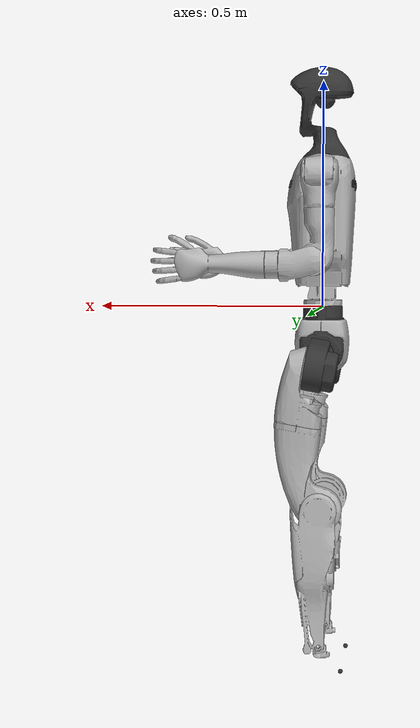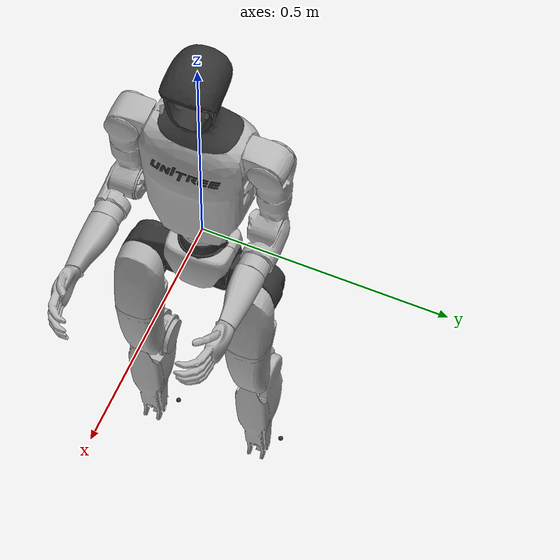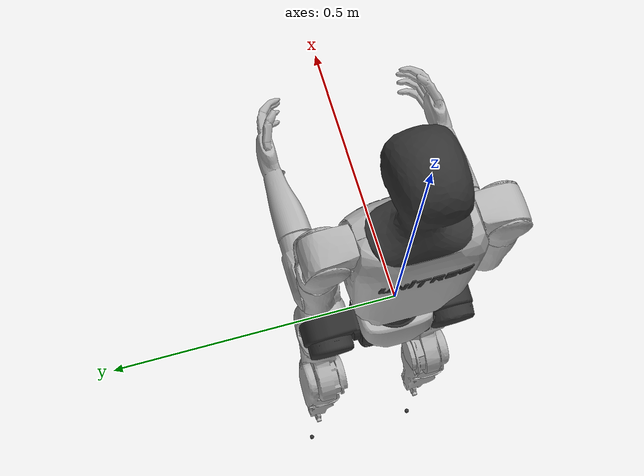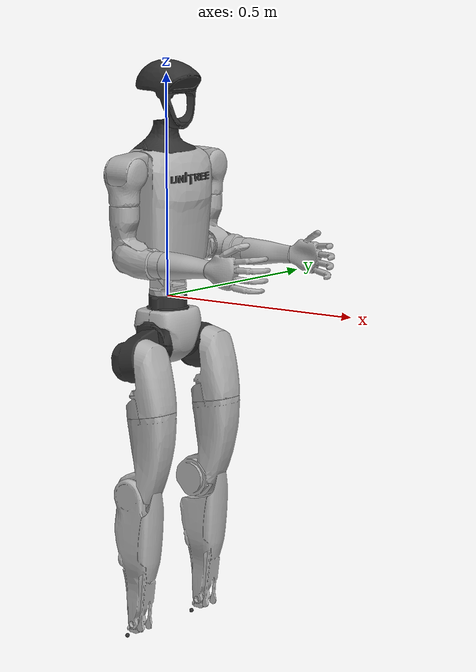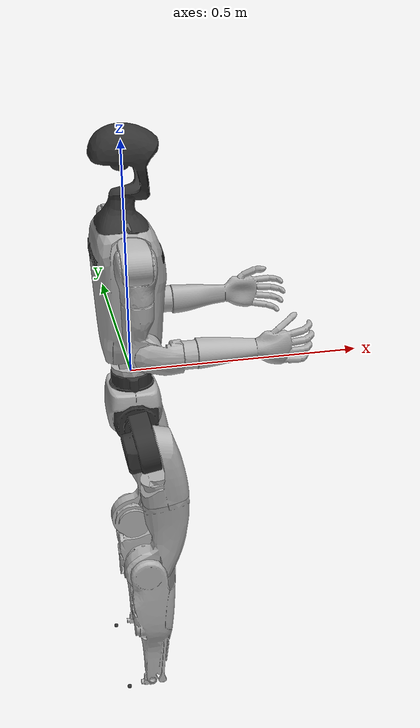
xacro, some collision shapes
<robot name="g1_23dof_rev_1_0" xmlns:xacro="http://ros.org/wiki/xacro">
  <xacro:arg name="hardware_plugin" default="mujoco_ros2_control/MujocoSystem"/>
  <link name="base_link"/>
  <joint name="base_link_to_pelvis" type="fixed">
    <parent link="base_link"/>
    <child link="pelvis"/>
    <origin xyz="0 0 0" rpy="0 0 0"/>
  </joint>
  <material name="dark">
    <color rgba="0.2 0.2 0.2 1"/>
  </material>
  <material name="white">
    <color rgba="0.7 0.7 0.7 1"/>
  </material>

  <mujoco>
    <compiler meshdir="meshes" discardvisual="false"/>
  </mujoco>

  <!-- [CAUTION] uncomment when convert to mujoco -->

  <link name="pelvis">
    <inertial>
      <origin xyz="0 0 -0.07605" rpy="0 0 0"/>
      <mass value="3.813"/>
      <inertia ixx="0.010549" ixy="0" ixz="2.1E-06" iyy="0.0093089" iyz="0" izz="0.0079184"/>
    </inertial>
    <visual>
      <origin xyz="0 0 0" rpy="0 0 0"/>
      <geometry>
        <mesh filename="meshes/pelvis.STL"/>
      </geometry>
      <material name="dark"/>
    </visual>
  </link>
  <link name="pelvis_contour_link">
    <inertial>
      <origin xyz="0 0 0" rpy="0 0 0"/>
      <mass value="0.001"/>
      <inertia ixx="1e-7" ixy="0" ixz="0" iyy="1e-7" iyz="0" izz="1e-7"/>
    </inertial>
    <visual>
      <origin xyz="0 0 0" rpy="0 0 0"/>
      <geometry>
        <mesh filename="meshes/pelvis_contour_link.STL"/>
      </geometry>
      <material name="white"/>
    </visual>
    <collision>
      <origin xyz="0 0 0" rpy="0 0 0"/>
      <geometry>
        <mesh filename="meshes/pelvis_contour_link.STL"/>
      </geometry>
    </collision>
  </link>
  <joint name="pelvis_contour_joint" type="fixed">
    <parent link="pelvis"/>
    <child link="pelvis_contour_link"/>
  </joint>

  <!-- Legs -->
  <link name="left_hip_pitch_link">
    <inertial>
      <origin xyz="0.002741 0.047791 -0.02606" rpy="0 0 0"/>
      <mass value="1.35"/>
      <inertia ixx="0.001811" ixy="3.68E-05" ixz="-3.44E-05" iyy="0.0014193" iyz="0.000171" izz="0.0012812"/>
    </inertial>
    <visual>
      <origin xyz="0 0 0" rpy="0 0 0"/>
      <geometry>
        <mesh filename="meshes/left_hip_pitch_link.STL"/>
      </geometry>
      <material name="dark"/>
    </visual>
    <collision>
      <origin xyz="0 0 0" rpy="0 0 0"/>
      <geometry>
        <mesh filename="meshes/left_hip_pitch_link.STL"/>
      </geometry>
    </collision>
  </link>
  <joint name="left_hip_pitch_joint" type="revolute">
    <origin xyz="0 0.064452 -0.1027" rpy="0 0 0"/>
    <parent link="pelvis"/>
    <child link="left_hip_pitch_link"/>
    <axis xyz="0 1 0"/>
    <limit lower="-2.5307" upper="2.8798" effort="88" velocity="32"/>
  </joint>
  <link name="left_hip_roll_link">
    <inertial>
      <origin xyz="0.029812 -0.001045 -0.087934" rpy="0 0 0"/>
      <mass value="1.52"/>
      <inertia ixx="0.0023773" ixy="-3.8E-06" ixz="-0.0003908" iyy="0.0024123" iyz="1.84E-05" izz="0.0016595"/>
    </inertial>
    <visual>
      <origin xyz="0 0 0" rpy="0 0 0"/>
      <geometry>
        <mesh filename="meshes/left_hip_roll_link.STL"/>
      </geometry>
      <material name="white"/>
    </visual>
    <collision>
      <origin xyz="0 0 0" rpy="0 0 0"/>
      <geometry>
        <mesh filename="meshes/left_hip_roll_link.STL"/>
      </geometry>
    </collision>
  </link>
  <joint name="left_hip_roll_joint" type="revolute">
    <origin xyz="0 0.052 -0.030465" rpy="0 -0.1749 0"/>
    <parent link="left_hip_pitch_link"/>
    <child link="left_hip_roll_link"/>
    <axis xyz="1 0 0"/>
    <limit lower="-0.5236" upper="2.9671" effort="139" velocity="20"/>
  </joint>
  <link name="left_hip_yaw_link">
    <inertial>
      <origin xyz="-0.057709 -0.010981 -0.15078" rpy="0 0 0"/>
      <mass value="1.702"/>
      <inertia ixx="0.0057774" ixy="-0.0005411" ixz="-0.0023948" iyy="0.0076124" iyz="-0.0007072" izz="0.003149"/>
    </inertial>
    <visual>
      <origin xyz="0 0 0" rpy="0 0 0"/>
      <geometry>
        <mesh filename="meshes/left_hip_yaw_link.STL"/>
      </geometry>
      <material name="white"/>
    </visual>
    <collision>
      <origin xyz="0 0 0" rpy="0 0 0"/>
      <geometry>
        <mesh filename="meshes/left_hip_yaw_link.STL"/>
      </geometry>
    </collision>
  </link>
  <joint name="left_hip_yaw_joint" type="revolute">
    <origin xyz="0.025001 0 -0.12412" rpy="0 0 0"/>
    <parent link="left_hip_roll_link"/>
    <child link="left_hip_yaw_link"/>
    <axis xyz="0 0 1"/>
    <limit lower="-2.7576" upper="2.7576" effort="88" velocity="32"/>
  </joint>
  <link name="left_knee_link">
    <inertial>
      <origin xyz="0.005457 0.003964 -0.12074" rpy="0 0 0"/>
      <mass value="1.932"/>
      <inertia ixx="0.011329" ixy="4.82E-05" ixz="-4.49E-05" iyy="0.011277" iyz="-0.0007146" izz="0.0015168"/>
    </inertial>
    <visual>
      <origin xyz="0 0 0" rpy="0 0 0"/>
      <geometry>
        <mesh filename="meshes/left_knee_link.STL"/>
      </geometry>
      <material name="white"/>
    </visual>
    <collision>
      <origin xyz="0 0 0" rpy="0 0 0"/>
      <geometry>
        <mesh filename="meshes/left_knee_link.STL"/>
      </geometry>
    </collision>
  </link>
  <joint name="left_knee_joint" type="revolute">
    <origin xyz="-0.078273 0.0021489 -0.17734" rpy="0 0.1749 0"/>
    <parent link="left_hip_yaw_link"/>
    <child link="left_knee_link"/>
    <axis xyz="0 1 0"/>
    <limit lower="-0.087267" upper="2.8798" effort="139" velocity="20"/>
  </joint>
  <link name="left_ankle_pitch_link">
    <inertial>
      <origin xyz="-0.007269 0 0.011137" rpy="0 0 0"/>
      <mass value="0.074"/>
      <inertia ixx="8.4E-06" ixy="0" ixz="-2.9E-06" iyy="1.89E-05" iyz="0" izz="1.26E-05"/>
    </inertial>
    <visual>
      <origin xyz="0 0 0" rpy="0 0 0"/>
      <geometry>
        <mesh filename="meshes/left_ankle_pitch_link.STL"/>
      </geometry>
      <material name="white"/>
    </visual>
    <collision>
      <origin xyz="0 0 0" rpy="0 0 0"/>
      <geometry>
        <mesh filename="meshes/left_ankle_pitch_link.STL"/>
      </geometry>
    </collision>
  </link>
  <joint name="left_ankle_pitch_joint" type="revolute">
    <origin xyz="0 -9.4445E-05 -0.30001" rpy="0 0 0"/>
    <parent link="left_knee_link"/>
    <child link="left_ankle_pitch_link"/>
    <axis xyz="0 1 0"/>
    <limit lower="-0.87267" upper="0.5236" effort="35" velocity="30"/>
  </joint>
  <link name="left_ankle_roll_link">
    <inertial>
      <origin xyz="0.026505 0 -0.016425" rpy="0 0 0"/>
      <mass value="0.608"/>
      <inertia ixx="0.0002231" ixy="2E-07" ixz="8.91E-05" iyy="0.0016161" iyz="-1E-07" izz="0.0016667"/>
    </inertial>
    <visual>
      <origin xyz="0 0 0" rpy="0 0 0"/>
      <geometry>
        <mesh filename="meshes/left_ankle_roll_link.STL"/>
      </geometry>
      <material name="dark"/>
    </visual>
    <collision>
      <origin xyz="-0.05 0.025 -0.03" rpy="0 0 0"/>
      <geometry>
        <sphere radius="0.005"/>
      </geometry>
    </collision>
    <collision>
      <origin xyz="-0.05 -0.025 -0.03" rpy="0 0 0"/>
      <geometry>
        <sphere radius="0.005"/>
      </geometry>
    </collision>
    <collision>
      <origin xyz="0.12 0.03 -0.03" rpy="0 0 0"/>
      <geometry>
        <sphere radius="0.005"/>
      </geometry>
    </collision>
    <collision>
      <origin xyz="0.12 -0.03 -0.03" rpy="0 0 0"/>
      <geometry>
        <sphere radius="0.005"/>
      </geometry>
    </collision>
  </link>
  <joint name="left_ankle_roll_joint" type="revolute">
    <origin xyz="0 0 -0.017558" rpy="0 0 0"/>
    <parent link="left_ankle_pitch_link"/>
    <child link="left_ankle_roll_link"/>
    <axis xyz="1 0 0"/>
    <limit lower="-0.2618" upper="0.2618" effort="35" velocity="30"/>
  </joint>
  <link name="right_hip_pitch_link">
    <inertial>
      <origin xyz="0.002741 -0.047791 -0.02606" rpy="0 0 0"/>
      <mass value="1.35"/>
      <inertia ixx="0.001811" ixy="-3.68E-05" ixz="-3.44E-05" iyy="0.0014193" iyz="-0.000171" izz="0.0012812"/>
    </inertial>
    <visual>
      <origin xyz="0 0 0" rpy="0 0 0"/>
      <geometry>
        <mesh filename="meshes/right_hip_pitch_link.STL"/>
      </geometry>
      <material name="dark"/>
    </visual>
    <collision>
      <origin xyz="0 0 0" rpy="0 0 0"/>
      <geometry>
        <mesh filename="meshes/right_hip_pitch_link.STL"/>
      </geometry>
    </collision>
  </link>
  <joint name="right_hip_pitch_joint" type="revolute">
    <origin xyz="0 -0.064452 -0.1027" rpy="0 0 0"/>
    <parent link="pelvis"/>
    <child link="right_hip_pitch_link"/>
    <axis xyz="0 1 0"/>
    <limit lower="-2.5307" upper="2.8798" effort="88" velocity="32"/>
  </joint>
  <link name="right_hip_roll_link">
    <inertial>
      <origin xyz="0.029812 0.001045 -0.087934" rpy="0 0 0"/>
      <mass value="1.52"/>
      <inertia ixx="0.0023773" ixy="3.8E-06" ixz="-0.0003908" iyy="0.0024123" iyz="-1.84E-05" izz="0.0016595"/>
    </inertial>
    <visual>
      <origin xyz="0 0 0" rpy="0 0 0"/>
      <geometry>
        <mesh filename="meshes/right_hip_roll_link.STL"/>
      </geometry>
      <material name="white"/>
    </visual>
    <collision>
      <origin xyz="0 0 0" rpy="0 0 0"/>
      <geometry>
        <mesh filename="meshes/right_hip_roll_link.STL"/>
      </geometry>
    </collision>
  </link>
  <joint name="right_hip_roll_joint" type="revolute">
    <origin xyz="0 -0.052 -0.030465" rpy="0 -0.1749 0"/>
    <parent link="right_hip_pitch_link"/>
    <child link="right_hip_roll_link"/>
    <axis xyz="1 0 0"/>
    <limit lower="-2.9671" upper="0.5236" effort="139" velocity="20"/>
  </joint>
  <link name="right_hip_yaw_link">
    <inertial>
      <origin xyz="-0.057709 0.010981 -0.15078" rpy="0 0 0"/>
      <mass value="1.702"/>
      <inertia ixx="0.0057774" ixy="0.0005411" ixz="-0.0023948" iyy="0.0076124" iyz="0.0007072" izz="0.003149"/>
    </inertial>
    <visual>
      <origin xyz="0 0 0" rpy="0 0 0"/>
      <geometry>
        <mesh filename="meshes/right_hip_yaw_link.STL"/>
      </geometry>
      <material name="white"/>
    </visual>
    <collision>
      <origin xyz="0 0 0" rpy="0 0 0"/>
      <geometry>
        <mesh filename="meshes/right_hip_yaw_link.STL"/>
      </geometry>
    </collision>
  </link>
  <joint name="right_hip_yaw_joint" type="revolute">
    <origin xyz="0.025001 0 -0.12412" rpy="0 0 0"/>
    <parent link="right_hip_roll_link"/>
    <child link="right_hip_yaw_link"/>
    <axis xyz="0 0 1"/>
    <limit lower="-2.7576" upper="2.7576" effort="88" velocity="32"/>
  </joint>
  <link name="right_knee_link">
    <inertial>
      <origin xyz="0.005457 -0.003964 -0.12074" rpy="0 0 0"/>
      <mass value="1.932"/>
      <inertia ixx="0.011329" ixy="-4.82E-05" ixz="4.49E-05" iyy="0.011277" iyz="0.0007146" izz="0.0015168"/>
    </inertial>
    <visual>
      <origin xyz="0 0 0" rpy="0 0 0"/>
      <geometry>
        <mesh filename="meshes/right_knee_link.STL"/>
      </geometry>
      <material name="white"/>
    </visual>
    <collision>
      <origin xyz="0 0 0" rpy="0 0 0"/>
      <geometry>
        <mesh filename="meshes/right_knee_link.STL"/>
      </geometry>
    </collision>
  </link>
  <joint name="right_knee_joint" type="revolute">
    <origin xyz="-0.078273 -0.0021489 -0.17734" rpy="0 0.1749 0"/>
    <parent link="right_hip_yaw_link"/>
    <child link="right_knee_link"/>
    <axis xyz="0 1 0"/>
    <limit lower="-0.087267" upper="2.8798" effort="139" velocity="20"/>
  </joint>
  <link name="right_ankle_pitch_link">
    <inertial>
      <origin xyz="-0.007269 0 0.011137" rpy="0 0 0"/>
      <mass value="0.074"/>
      <inertia ixx="8.4E-06" ixy="0" ixz="-2.9E-06" iyy="1.89E-05" iyz="0" izz="1.26E-05"/>
    </inertial>
    <visual>
      <origin xyz="0 0 0" rpy="0 0 0"/>
      <geometry>
        <mesh filename="meshes/right_ankle_pitch_link.STL"/>
      </geometry>
      <material name="white"/>
    </visual>
    <collision>
      <origin xyz="0 0 0" rpy="0 0 0"/>
      <geometry>
        <mesh filename="meshes/right_ankle_pitch_link.STL"/>
      </geometry>
    </collision>
  </link>
  <joint name="right_ankle_pitch_joint" type="revolute">
    <origin xyz="0 9.4445E-05 -0.30001" rpy="0 0 0"/>
    <parent link="right_knee_link"/>
    <child link="right_ankle_pitch_link"/>
    <axis xyz="0 1 0"/>
    <limit lower="-0.87267" upper="0.5236" effort="35" velocity="30"/>
  </joint>
  <link name="right_ankle_roll_link">
    <inertial>
      <origin xyz="0.026505 0 -0.016425" rpy="0 0 0"/>
      <mass value="0.608"/>
      <inertia ixx="0.0002231" ixy="-2E-07" ixz="8.91E-05" iyy="0.0016161" iyz="1E-07" izz="0.0016667"/>
    </inertial>
    <visual>
      <origin xyz="0 0 0" rpy="0 0 0"/>
      <geometry>
        <mesh filename="meshes/right_ankle_roll_link.STL"/>
      </geometry>
      <material name="dark"/>
    </visual>
    <collision>
      <origin xyz="-0.05 0.025 -0.03" rpy="0 0 0"/>
      <geometry>
        <sphere radius="0.005"/>
      </geometry>
    </collision>
    <collision>
      <origin xyz="-0.05 -0.025 -0.03" rpy="0 0 0"/>
      <geometry>
        <sphere radius="0.005"/>
      </geometry>
    </collision>
    <collision>
      <origin xyz="0.12 0.03 -0.03" rpy="0 0 0"/>
      <geometry>
        <sphere radius="0.005"/>
      </geometry>
    </collision>
    <collision>
      <origin xyz="0.12 -0.03 -0.03" rpy="0 0 0"/>
      <geometry>
        <sphere radius="0.005"/>
      </geometry>
    </collision>
  </link>
  <joint name="right_ankle_roll_joint" type="revolute">
    <origin xyz="0 0 -0.017558" rpy="0 0 0"/>
    <parent link="right_ankle_pitch_link"/>
    <child link="right_ankle_roll_link"/>
    <axis xyz="1 0 0"/>
    <limit lower="-0.2618" upper="0.2618" effort="35" velocity="30"/>
  </joint>

  <!-- Torso -->
  <joint name="waist_yaw_joint" type="revolute">
    <origin xyz="-0.0039635 0 0.044" rpy="0 0 0"/>
    <parent link="pelvis"/>
    <child link="torso_link"/>
    <axis xyz="0 0 1"/>
    <limit lower="-2.618" upper="2.618" effort="88" velocity="32"/>
  </joint>
  <link name="torso_link">
    <inertial>
      <origin xyz="0.000931 0.000346 0.15082" rpy="0 0 0"/>
      <mass value="6.78"/>
      <inertia ixx="0.05905" ixy="3.3302E-05" ixz="-0.0017715" iyy="0.047014" iyz="-2.2399E-05" izz="0.025652"/>
    </inertial>
    <visual>
      <origin xyz="0.0039635 0 -0.044" rpy="0 0 0"/>
      <geometry>
        <mesh filename="meshes/torso_link_23dof_rev_1_0.STL"/>
      </geometry>
      <material name="white"/>
    </visual>
    <collision>
      <origin xyz="0.0039635 0 -0.044" rpy="0 0 0"/>
      <geometry>
        <mesh filename="meshes/torso_link_23dof_rev_1_0.STL"/>
      </geometry>
    </collision>
  </link>

  <!-- LOGO -->
  <joint name="logo_joint" type="fixed">
    <origin xyz="0.0039635 0 -0.044" rpy="0 0 0"/>
    <parent link="torso_link"/>
    <child link="logo_link"/>
  </joint>
  <link name="logo_link">
    <inertial>
      <origin xyz="0 0 0" rpy="0 0 0"/>
      <mass value="0.001"/>
      <inertia ixx="1e-7" ixy="0" ixz="0" iyy="1e-7" iyz="0" izz="1e-7"/>
    </inertial>
    <visual>
      <origin xyz="0 0 0" rpy="0 0 0"/>
      <geometry>
        <mesh filename="meshes/logo_link.STL"/>
      </geometry>
      <material name="dark"/>
    </visual>
    <collision>
      <origin xyz="0 0 0" rpy="0 0 0"/>
      <geometry>
        <mesh filename="meshes/logo_link.STL"/>
      </geometry>
    </collision>
  </link>

  <!-- Head -->
  <link name="head_link">
    <inertial>
      <origin xyz="0.005267 0.000299 0.449869" rpy="0 0 0"/>
      <mass value="1.036"/>
      <inertia ixx="0.004085051" ixy="-2.543E-06" ixz="-6.9455E-05" iyy="0.004185212" iyz="-3.726E-06" izz="0.001807911"/>
    </inertial>
    <visual>
      <origin xyz="0 0 0" rpy="0 0 0"/>
      <geometry>
        <mesh filename="meshes/head_link.STL"/>
      </geometry>
      <material name="dark"/>
    </visual>
    <collision>
      <origin xyz="0 0 0" rpy="0 0 0"/>
      <geometry>
        <mesh filename="meshes/head_link.STL"/>
      </geometry>
    </collision>
  </link>
  <joint name="head_joint" type="fixed">
    <origin xyz="0.0039635 0 -0.044" rpy="0 0 0"/>
    <parent link="torso_link"/>
    <child link="head_link"/>
  </joint>

  <!-- IMU -->
  <link name="imu_in_torso"></link>
  <joint name="imu_in_torso_joint" type="fixed">
    <origin xyz="-0.03959 -0.00224 0.14792" rpy="0 0 0"/>
    <parent link="torso_link"/>
    <child link="imu_in_torso"/>
  </joint>

  <link name="imu_in_pelvis"></link>
  <joint name="imu_in_pelvis_joint" type="fixed">
    <origin xyz="0.04525 0 -0.08339" rpy="0 0 0"/>
    <parent link="pelvis"/>
    <child link="imu_in_pelvis"/>
  </joint>

  <link name="d435_link"></link>
  <joint name="d435_joint" type="fixed">
    <origin xyz="0.0576235 0.01753 0.42987" rpy="0 0.8307767239493009 0"/>
    <parent link="torso_link"/>
    <child link="d435_link"/>
  </joint>

  <!-- mid360 -->
  <link name="mid360_link"></link>
  <joint name="mid360_joint" type="fixed">
    <origin xyz="0.0002835 0.00003 0.41618" rpy="0 0.04014257279586953 0"/>
    <parent link="torso_link"/>
    <child link="mid360_link"/>
  </joint>

  <!-- Arm -->
  <link name="left_shoulder_pitch_link">
    <inertial>
      <origin xyz="0 0.035892 -0.011628" rpy="0 0 0"/>
      <mass value="0.718"/>
      <inertia ixx="0.0004291" ixy="-9.2E-06" ixz="6.4E-06" iyy="0.000453" iyz="2.26E-05" izz="0.000423"/>
    </inertial>
    <visual>
      <origin xyz="0 0 0" rpy="0 0 0"/>
      <geometry>
        <mesh filename="meshes/left_shoulder_pitch_link.STL"/>
      </geometry>
      <material name="white"/>
    </visual>
    <collision>
      <origin xyz="0 0.04 -0.01" rpy="0 1.5707963267948966 0"/>
      <geometry>
        <cylinder radius="0.03" length="0.05"/>
      </geometry>
    </collision>
  </link>
  <joint name="left_shoulder_pitch_joint" type="revolute">
    <origin xyz="0.0039563 0.10022 0.24778" rpy="0.27931 5.4949E-05 -0.00019159"/>
    <parent link="torso_link"/>
    <child link="left_shoulder_pitch_link"/>
    <axis xyz="0 1 0"/>
    <limit lower="-3.0892" upper="2.6704" effort="25" velocity="37"/>
  </joint>
  <link name="left_shoulder_roll_link">
    <inertial>
      <origin xyz="-0.000227 0.00727 -0.063243" rpy="0 0 0"/>
      <mass value="0.643"/>
      <inertia ixx="0.0006177" ixy="-1E-06" ixz="8.7E-06" iyy="0.0006912" iyz="-5.3E-06" izz="0.0003894"/>
    </inertial>
    <visual>
      <origin xyz="0 0 0" rpy="0 0 0"/>
      <geometry>
        <mesh filename="meshes/left_shoulder_roll_link.STL"/>
      </geometry>
      <material name="white"/>
    </visual>
    <collision>
      <origin xyz="-0.004 0.006 -0.053" rpy="0 0 0"/>
      <geometry>
        <cylinder radius="0.03" length="0.03"/>
      </geometry>
    </collision>
  </link>
  <joint name="left_shoulder_roll_joint" type="revolute">
    <origin xyz="0 0.038 -0.013831" rpy="-0.27925 0 0"/>
    <parent link="left_shoulder_pitch_link"/>
    <child link="left_shoulder_roll_link"/>
    <axis xyz="1 0 0"/>
    <limit lower="-1.5882" upper="2.2515" effort="25" velocity="37"/>
  </joint>
  <link name="left_shoulder_yaw_link">
    <inertial>
      <origin xyz="0.010773 -0.002949 -0.072009" rpy="0 0 0"/>
      <mass value="0.734"/>
      <inertia ixx="0.0009988" ixy="7.9E-06" ixz="0.0001412" iyy="0.0010605" iyz="-2.86E-05" izz="0.0004354"/>
    </inertial>
    <visual>
      <origin xyz="0 0 0" rpy="0 0 0"/>
      <geometry>
        <mesh filename="meshes/left_shoulder_yaw_link.STL"/>
      </geometry>
      <material name="white"/>
    </visual>
    <collision>
      <origin xyz="0 0 0" rpy="0 0 0"/>
      <geometry>
        <mesh filename="meshes/left_shoulder_yaw_link.STL"/>
      </geometry>
    </collision>
  </link>
  <joint name="left_shoulder_yaw_joint" type="revolute">
    <origin xyz="0 0.00624 -0.1032" rpy="0 0 0"/>
    <parent link="left_shoulder_roll_link"/>
    <child link="left_shoulder_yaw_link"/>
    <axis xyz="0 0 1"/>
    <limit lower="-2.618" upper="2.618" effort="25" velocity="37"/>
  </joint>
  <link name="left_elbow_link">
    <inertial>
      <origin xyz="0.064956 0.004454 -0.010062" rpy="0 0 0"/>
      <mass value="0.6"/>
      <inertia ixx="0.0002891" ixy="6.53E-05" ixz="1.72E-05" iyy="0.0004152" iyz="-5.6E-06" izz="0.0004197"/>
    </inertial>
    <visual>
      <origin xyz="0 0 0" rpy="0 0 0"/>
      <geometry>
        <mesh filename="meshes/left_elbow_link.STL"/>
      </geometry>
      <material name="white"/>
    </visual>
    <collision>
      <origin xyz="0 0 0" rpy="0 0 0"/>
      <geometry>
        <mesh filename="meshes/left_elbow_link.STL"/>
      </geometry>
    </collision>
  </link>
  <joint name="left_elbow_joint" type="revolute">
    <origin xyz="0.015783 0 -0.080518" rpy="0 0 0"/>
    <parent link="left_shoulder_yaw_link"/>
    <child link="left_elbow_link"/>
    <axis xyz="0 1 0"/>
    <limit lower="-1.0472" upper="2.0944" effort="25" velocity="37"/>
  </joint>
  <joint name="left_wrist_roll_joint" type="revolute">
    <origin xyz="0.100 0.00188791 -0.010" rpy="0 0 0"/>
    <axis xyz="1 0 0"/>
    <parent link="left_elbow_link"/>
    <child link="left_wrist_roll_rubber_hand"/>
    <limit effort="25" velocity="37" lower="-1.972222054" upper="1.972222054"/>
  </joint>
  <link name="left_wrist_roll_rubber_hand">
    <inertial>
      <origin xyz="0.10794656650 0.00163511945 0.00202244863" rpy="0 0 0"/>
      <mass value="0.35692864"/>
      <inertia ixx="0.00019613494735" ixy="-0.00000419816908" ixz="-0.00003950860580" iyy="0.00200280358206" iyz="0.00000249774203" izz="0.00194181412808"/>
    </inertial>
    <visual>
      <origin xyz="0 0 0" rpy="0 0 0"/>
      <geometry>
        <mesh filename="meshes/left_wrist_roll_rubber_hand.STL"/>
      </geometry>
      <material name="white"/>
    </visual>
    <collision>
      <origin xyz="0 0 0" rpy="0 0 0"/>
      <geometry>
        <mesh filename="meshes/left_wrist_roll_rubber_hand.STL"/>
      </geometry>
    </collision>
  </link>
  <link name="right_shoulder_pitch_link">
    <inertial>
      <origin xyz="0 -0.035892 -0.011628" rpy="0 0 0"/>
      <mass value="0.718"/>
      <inertia ixx="0.0004291" ixy="9.2E-06" ixz="6.4E-06" iyy="0.000453" iyz="-2.26E-05" izz="0.000423"/>
    </inertial>
    <visual>
      <origin xyz="0 0 0" rpy="0 0 0"/>
      <geometry>
        <mesh filename="meshes/right_shoulder_pitch_link.STL"/>
      </geometry>
      <material name="white"/>
    </visual>
    <collision>
      <origin xyz="0 -0.04 -0.01" rpy="0 1.5707963267948966 0"/>
      <geometry>
        <cylinder radius="0.03" length="0.05"/>
      </geometry>
    </collision>
  </link>
  <joint name="right_shoulder_pitch_joint" type="revolute">
    <origin xyz="0.0039563 -0.10021 0.24778" rpy="-0.27931 5.4949E-05 0.00019159"/>
    <parent link="torso_link"/>
    <child link="right_shoulder_pitch_link"/>
    <axis xyz="0 1 0"/>
    <limit lower="-3.0892" upper="2.6704" effort="25" velocity="37"/>
  </joint>
  <link name="right_shoulder_roll_link">
    <inertial>
      <origin xyz="-0.000227 -0.00727 -0.063243" rpy="0 0 0"/>
      <mass value="0.643"/>
      <inertia ixx="0.0006177" ixy="1E-06" ixz="8.7E-06" iyy="0.0006912" iyz="5.3E-06" izz="0.0003894"/>
    </inertial>
    <visual>
      <origin xyz="0 0 0" rpy="0 0 0"/>
      <geometry>
        <mesh filename="meshes/right_shoulder_roll_link.STL"/>
      </geometry>
      <material name="white"/>
    </visual>
    <collision>
      <origin xyz="-0.004 -0.006 -0.053" rpy="0 0 0"/>
      <geometry>
        <cylinder radius="0.03" length="0.03"/>
      </geometry>
    </collision>
  </link>
  <joint name="right_shoulder_roll_joint" type="revolute">
    <origin xyz="0 -0.038 -0.013831" rpy="0.27925 0 0"/>
    <parent link="right_shoulder_pitch_link"/>
    <child link="right_shoulder_roll_link"/>
    <axis xyz="1 0 0"/>
    <limit lower="-2.2515" upper="1.5882" effort="25" velocity="37"/>
  </joint>
  <link name="right_shoulder_yaw_link">
    <inertial>
      <origin xyz="0.010773 0.002949 -0.072009" rpy="0 0 0"/>
      <mass value="0.734"/>
      <inertia ixx="0.0009988" ixy="-7.9E-06" ixz="0.0001412" iyy="0.0010605" iyz="2.86E-05" izz="0.0004354"/>
    </inertial>
    <visual>
      <origin xyz="0 0 0" rpy="0 0 0"/>
      <geometry>
        <mesh filename="meshes/right_shoulder_yaw_link.STL"/>
      </geometry>
      <material name="white"/>
    </visual>
    <collision>
      <origin xyz="0 0 0" rpy="0 0 0"/>
      <geometry>
        <mesh filename="meshes/right_shoulder_yaw_link.STL"/>
      </geometry>
    </collision>
  </link>
  <joint name="right_shoulder_yaw_joint" type="revolute">
    <origin xyz="0 -0.00624 -0.1032" rpy="0 0 0"/>
    <parent link="right_shoulder_roll_link"/>
    <child link="right_shoulder_yaw_link"/>
    <axis xyz="0 0 1"/>
    <limit lower="-2.618" upper="2.618" effort="25" velocity="37"/>
  </joint>
  <link name="right_elbow_link">
    <inertial>
      <origin xyz="0.064956 -0.004454 -0.010062" rpy="0 0 0"/>
      <mass value="0.6"/>
      <inertia ixx="0.0002891" ixy="-6.53E-05" ixz="1.72E-05" iyy="0.0004152" iyz="5.6E-06" izz="0.0004197"/>
    </inertial>
    <visual>
      <origin xyz="0 0 0" rpy="0 0 0"/>
      <geometry>
        <mesh filename="meshes/right_elbow_link.STL"/>
      </geometry>
      <material name="white"/>
    </visual>
    <collision>
      <origin xyz="0 0 0" rpy="0 0 0"/>
      <geometry>
        <mesh filename="meshes/right_elbow_link.STL"/>
      </geometry>
    </collision>
  </link>
  <joint name="right_elbow_joint" type="revolute">
    <origin xyz="0.015783 0 -0.080518" rpy="0 0 0"/>
    <parent link="right_shoulder_yaw_link"/>
    <child link="right_elbow_link"/>
    <axis xyz="0 1 0"/>
    <limit lower="-1.0472" upper="2.0944" effort="25" velocity="37"/>
  </joint>
  <joint name="right_wrist_roll_joint" type="revolute">
    <origin xyz="0.100 -0.00188791 -0.010" rpy="0 0 0"/>
    <axis xyz="1 0 0"/>
    <parent link="right_elbow_link"/>
    <child link="right_wrist_roll_rubber_hand"/>
    <limit effort="25" velocity="37" lower="-1.972222054" upper="1.972222054"/>
  </joint>
  <link name="right_wrist_roll_rubber_hand">
    <inertial>
      <origin xyz="0.10794656650 -0.00163511945 0.00202244863" rpy="0 0 0"/>
      <mass value="0.35692864"/>
      <inertia ixx="0.00019613494735" ixy="0.00000419816908" ixz="-0.00003950860580" iyy="0.00200280358206" iyz="-0.00000249774203" izz="0.00194181412808"/>
    </inertial>
    <visual>
      <origin xyz="0 0 0" rpy="0 0 0"/>
      <geometry>
        <mesh filename="meshes/right_wrist_roll_rubber_hand.STL"/>
      </geometry>
      <material name="white"/>
    </visual>
    <collision>
      <origin xyz="0 0 0" rpy="0 0 0"/>
      <geometry>
        <mesh filename="meshes/right_wrist_roll_rubber_hand.STL"/>
      </geometry>
    </collision>
  </link>

  <ros2_control name="G1System" type="system">
    <hardware>
      <plugin>$(arg hardware_plugin)</plugin>
      <param name="ethercat_slave_config">config/ethercat_slaves.yaml</param>
      <param name="ethercat_network_interface">eth0</param>
    </hardware>

    <!-- 0: left_hip_pitch_joint -->
    <joint name="left_hip_pitch_joint">
      <command_interface name="effort"/>
      <state_interface name="position"><param name="initial_value">-0.2</param></state_interface>
      <state_interface name="velocity"/>
      <state_interface name="effort"/>
    </joint>
    <!-- 1: left_hip_roll_joint -->
    <joint name="left_hip_roll_joint">
      <command_interface name="effort"/>
      <state_interface name="position"><param name="initial_value">0.0</param></state_interface>
      <state_interface name="velocity"/>
      <state_interface name="effort"/>
    </joint>
    <!-- 2: left_hip_yaw_joint -->
    <joint name="left_hip_yaw_joint">
      <command_interface name="effort"/>
      <state_interface name="position"><param name="initial_value">0.0</param></state_interface>
      <state_interface name="velocity"/>
      <state_interface name="effort"/>
    </joint>
    <!-- 3: left_knee_joint -->
    <joint name="left_knee_joint">
      <command_interface name="effort"/>
      <state_interface name="position"><param name="initial_value">0.4</param></state_interface>
      <state_interface name="velocity"/>
      <state_interface name="effort"/>
    </joint>
    <!-- 4: left_ankle_pitch_joint -->
    <joint name="left_ankle_pitch_joint">
      <command_interface name="effort"/>
      <state_interface name="position"><param name="initial_value">-0.2</param></state_interface>
      <state_interface name="velocity"/>
      <state_interface name="effort"/>
    </joint>
    <!-- 5: left_ankle_roll_joint -->
    <joint name="left_ankle_roll_joint">
      <command_interface name="effort"/>
      <state_interface name="position"><param name="initial_value">0.0</param></state_interface>
      <state_interface name="velocity"/>
      <state_interface name="effort"/>
    </joint>
    <!-- 6: right_hip_pitch_joint -->
    <joint name="right_hip_pitch_joint">
      <command_interface name="effort"/>
      <state_interface name="position"><param name="initial_value">-0.2</param></state_interface>
      <state_interface name="velocity"/>
      <state_interface name="effort"/>
    </joint>
    <!-- 7: right_hip_roll_joint -->
    <joint name="right_hip_roll_joint">
      <command_interface name="effort"/>
      <state_interface name="position"><param name="initial_value">0.0</param></state_interface>
      <state_interface name="velocity"/>
      <state_interface name="effort"/>
    </joint>
    <!-- 8: right_hip_yaw_joint -->
    <joint name="right_hip_yaw_joint">
      <command_interface name="effort"/>
      <state_interface name="position"><param name="initial_value">0.0</param></state_interface>
      <state_interface name="velocity"/>
      <state_interface name="effort"/>
    </joint>
    <!-- 9: right_knee_joint -->
    <joint name="right_knee_joint">
      <command_interface name="effort"/>
      <state_interface name="position"><param name="initial_value">0.4</param></state_interface>
      <state_interface name="velocity"/>
      <state_interface name="effort"/>
    </joint>
    <!-- 10: right_ankle_pitch_joint -->
    <joint name="right_ankle_pitch_joint">
      <command_interface name="effort"/>
      <state_interface name="position"><param name="initial_value">-0.2</param></state_interface>
      <state_interface name="velocity"/>
      <state_interface name="effort"/>
    </joint>
    <!-- 11: right_ankle_roll_joint -->
    <joint name="right_ankle_roll_joint">
      <command_interface name="effort"/>
      <state_interface name="position"><param name="initial_value">0.0</param></state_interface>
      <state_interface name="velocity"/>
      <state_interface name="effort"/>
    </joint>
    <!-- 12: waist_yaw_joint -->
    <joint name="waist_yaw_joint">
      <command_interface name="effort"/>
      <state_interface name="position"><param name="initial_value">0.0</param></state_interface>
      <state_interface name="velocity"/>
      <state_interface name="effort"/>
    </joint>
    <!-- 13: left_shoulder_pitch_joint -->
    <joint name="left_shoulder_pitch_joint">
      <command_interface name="effort"/>
      <state_interface name="position"><param name="initial_value">0.3</param></state_interface>
      <state_interface name="velocity"/>
      <state_interface name="effort"/>
    </joint>
    <!-- 14: left_shoulder_roll_joint -->
    <joint name="left_shoulder_roll_joint">
      <command_interface name="effort"/>
      <state_interface name="position"><param name="initial_value">0.15</param></state_interface>
      <state_interface name="velocity"/>
      <state_interface name="effort"/>
    </joint>
    <!-- 15: left_shoulder_yaw_joint -->
    <joint name="left_shoulder_yaw_joint">
      <command_interface name="effort"/>
      <state_interface name="position"><param name="initial_value">0.0</param></state_interface>
      <state_interface name="velocity"/>
      <state_interface name="effort"/>
    </joint>
    <!-- 16: left_elbow_joint -->
    <joint name="left_elbow_joint">
      <command_interface name="effort"/>
      <state_interface name="position"><param name="initial_value">0.5</param></state_interface>
      <state_interface name="velocity"/>
      <state_interface name="effort"/>
    </joint>
    <!-- 17: left_wrist_roll_joint -->
    <joint name="left_wrist_roll_joint">
      <command_interface name="effort"/>
      <state_interface name="position"><param name="initial_value">0.0</param></state_interface>
      <state_interface name="velocity"/>
      <state_interface name="effort"/>
    </joint>
    <!-- 18: right_shoulder_pitch_joint -->
    <joint name="right_shoulder_pitch_joint">
      <command_interface name="effort"/>
      <state_interface name="position"><param name="initial_value">0.3</param></state_interface>
      <state_interface name="velocity"/>
      <state_interface name="effort"/>
    </joint>
    <!-- 19: right_shoulder_roll_joint -->
    <joint name="right_shoulder_roll_joint">
      <command_interface name="effort"/>
      <state_interface name="position"><param name="initial_value">-0.15</param></state_interface>
      <state_interface name="velocity"/>
      <state_interface name="effort"/>
    </joint>
    <!-- 20: right_shoulder_yaw_joint -->
    <joint name="right_shoulder_yaw_joint">
      <command_interface name="effort"/>
      <state_interface name="position"><param name="initial_value">0.0</param></state_interface>
      <state_interface name="velocity"/>
      <state_interface name="effort"/>
    </joint>
    <!-- 21: right_elbow_joint -->
    <joint name="right_elbow_joint">
      <command_interface name="effort"/>
      <state_interface name="position"><param name="initial_value">0.5</param></state_interface>
      <state_interface name="velocity"/>
      <state_interface name="effort"/>
    </joint>
    <!-- 22: right_wrist_roll_joint -->
    <joint name="right_wrist_roll_joint">
      <command_interface name="effort"/>
      <state_interface name="position"><param name="initial_value">0.0</param></state_interface>
      <state_interface name="velocity"/>
      <state_interface name="effort"/>
    </joint>

    <sensor name="imu_imu">
      <state_interface name="orientation.x"/>
      <state_interface name="orientation.y"/>
      <state_interface name="orientation.z"/>
      <state_interface name="orientation.w"/>
      <state_interface name="angular_velocity.x"/>
      <state_interface name="angular_velocity.y"/>
      <state_interface name="angular_velocity.z"/>
      <state_interface name="linear_acceleration.x"/>
      <state_interface name="linear_acceleration.y"/>
      <state_interface name="linear_acceleration.z"/>
    </sensor>
  </ros2_control>

</robot>
